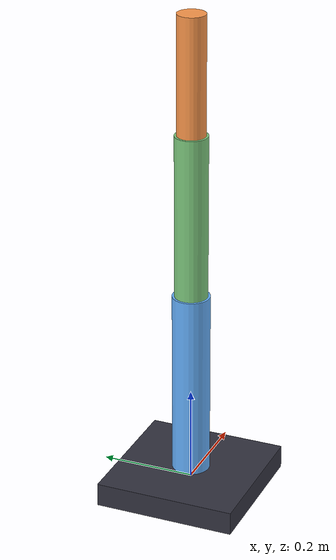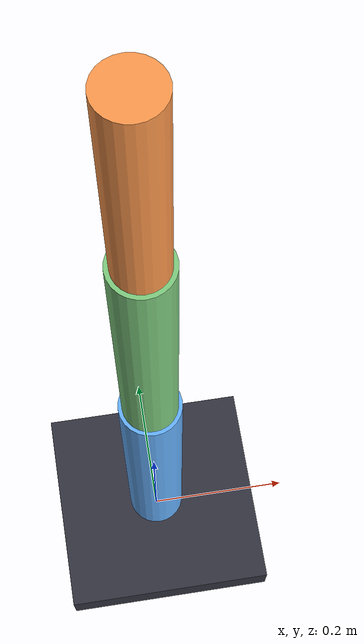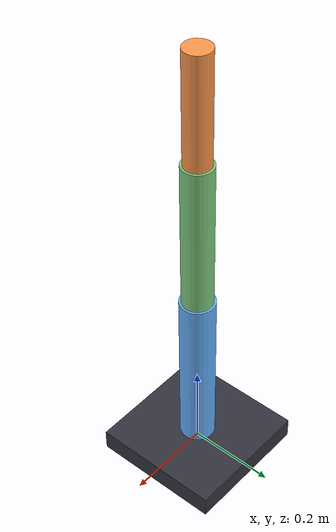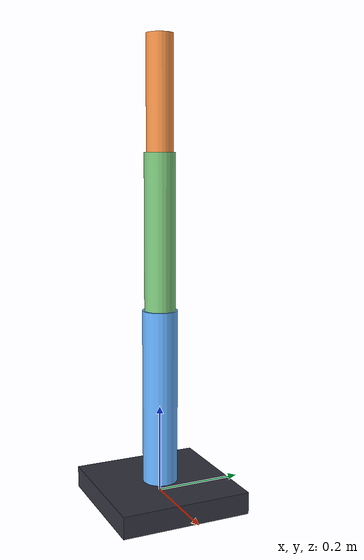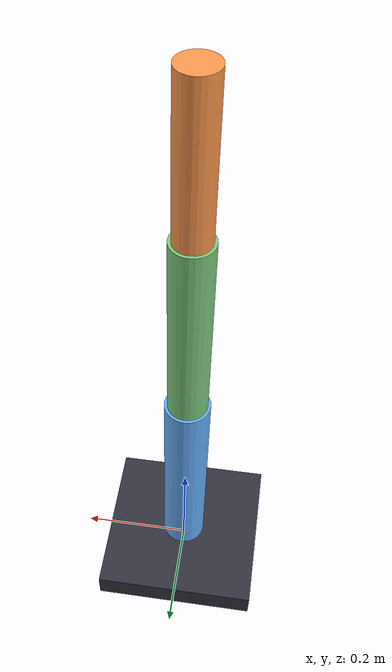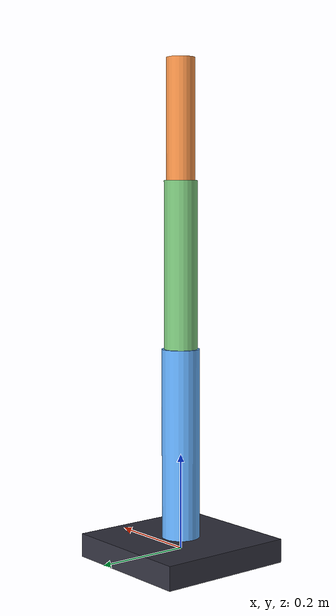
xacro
<?xml version="1.0"?>
<robot xmlns:xacro="http://www.ros.org/wiki/xacro" name="simple_arm">

  <xacro:macro name="cyl_link" params="name length radius color:='0.3 0.7 1.0 1.0'">
    <link name="${name}">
      <visual>
        <origin xyz="0 0 ${length/2}" rpy="0 0 0"/>
        <geometry>
          <cylinder radius="${radius}" length="${length}"/>
        </geometry>
        <material name="${name}_color">
          <color rgba="${color}"/>
        </material>
      </visual>
      <collision>
        <origin xyz="0 0 ${length/2}" rpy="0 0 0"/>
        <geometry>
          <cylinder radius="${radius}" length="${length}"/>
        </geometry>
      </collision>
    </link>
  </xacro:macro>

  <link name="base_link">
    <visual>
      <geometry><box size="0.3 0.3 0.05"/></geometry>
      <material name="base_color"><color rgba="0.2 0.2 0.25 1.0"/></material>
    </visual>
  </link>

  <xacro:cyl_link name="link1" length="0.4" radius="0.04" color="0.4 0.7 1.0 1.0"/>
  <xacro:cyl_link name="link2" length="0.35" radius="0.035" color="0.5 0.8 0.5 1.0"/>
  <xacro:cyl_link name="link3" length="0.25" radius="0.03" color="1.0 0.6 0.3 1.0"/>

  <joint name="joint1" type="revolute">
    <parent link="base_link"/>
    <child link="link1"/>
    <origin xyz="0 0 0.025" rpy="0 0 0"/>
    <axis xyz="0 0 1"/>
    <limit lower="-3.14" upper="3.14" effort="10" velocity="2"/>
  </joint>

  <joint name="joint2" type="revolute">
    <parent link="link1"/>
    <child link="link2"/>
    <origin xyz="0 0 0.4" rpy="0 0 0"/>
    <axis xyz="0 1 0"/>
    <limit lower="-1.57" upper="1.57" effort="10" velocity="2"/>
  </joint>

  <joint name="joint3" type="revolute">
    <parent link="link2"/>
    <child link="link3"/>
    <origin xyz="0 0 0.35" rpy="0 0 0"/>
    <axis xyz="0 1 0"/>
    <limit lower="-1.57" upper="1.57" effort="10" velocity="2"/>
  </joint>

</robot>
